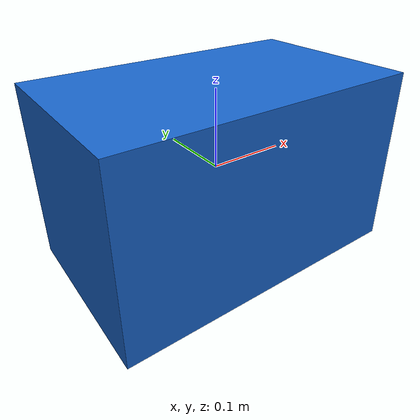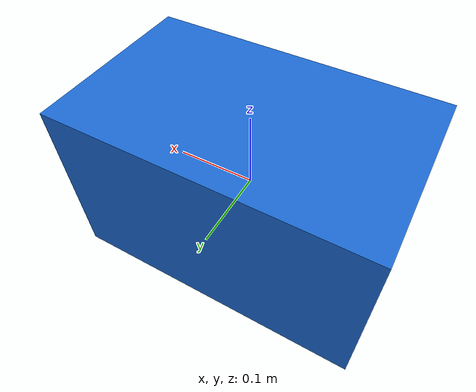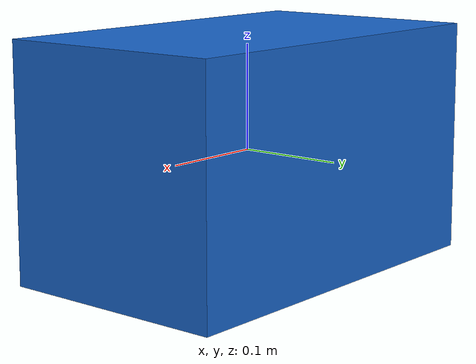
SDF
<?xml version="1.0" ?>
<sdf version="1.6">
  <model name="cube_obstacle">
    <link name="link">
      <visual name="visual">
        <geometry>
          <box>
            <size>0.375 0.225 0.225</size> <!-- Dimensiones del cubo (x, y, z) -->
          </box>
        </geometry>
        <material>
          <ambient>0.1 0.4 0.8 1</ambient> <!-- Color azul oscuro -->
          <diffuse>0.1 0.4 0.8 1</diffuse> <!-- Color azul oscuro -->

        </material>
      </visual>
      <collision name="collision">
        <geometry>
          <box>
            <size>0.375 0.225 0.225</size> <!-- Dimensiones del cubo (x, y, z) -->
          </box>
        </geometry>
      </collision>
      <inertial>
        <mass>10.0</mass>
        <inertia>
          <ixx>0.0833333</ixx>
          <ixy>0</ixy>
          <ixz>0</ixz>
          <iyy>0.0833333</iyy>
          <iyz>0</iyz>
          <izz>0.0833333</izz>
        </inertia>
        <pose>0 0 0 0 0 0</pose>
      </inertial>
    </link>
  </model>
</sdf>
